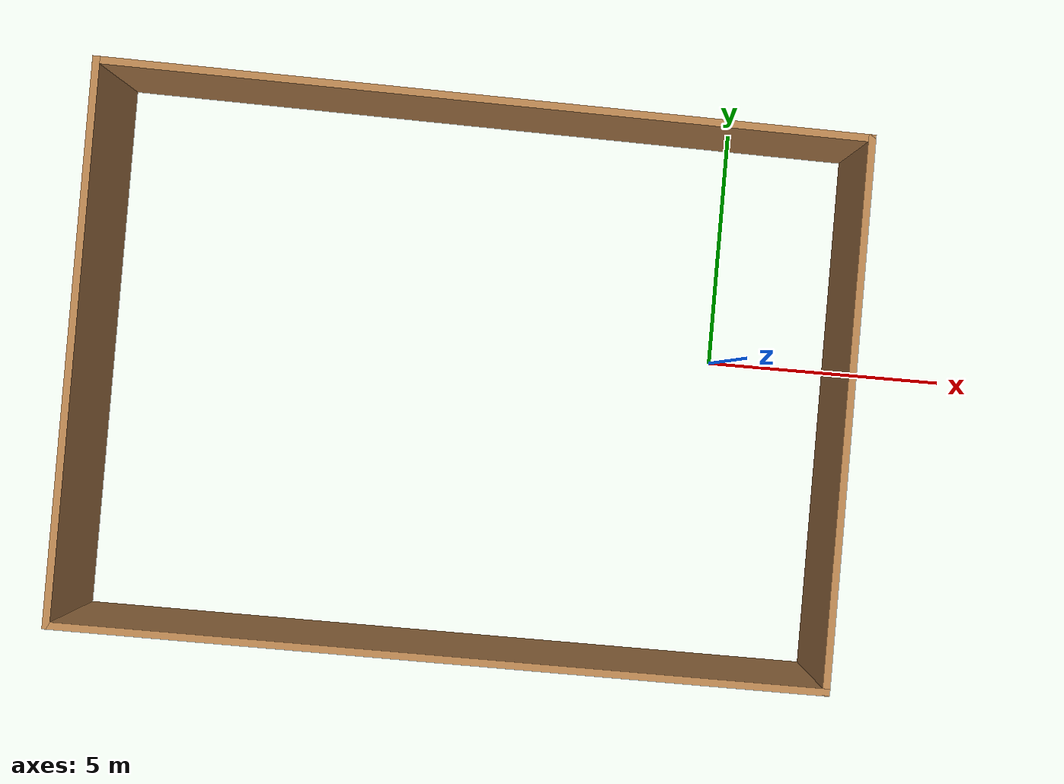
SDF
<?xml version='1.0'?>
<sdf version='1.7'>
  <model name='house'>
    <pose>-5.25958 -0.728097 0 0 -0 0</pose>
    <link name='Wall_0'>
      <collision name='Wall_0_Collision'>
        <geometry>
          <box>
            <size>11.5 0.15 2.5</size>
          </box>
        </geometry>
        <pose>0 0 1.25 0 -0 0</pose>
      </collision>
      <visual name='Wall_0_Visual'>
        <pose>0 0 1.25 0 -0 0</pose>
        <geometry>
          <box>
            <size>11.5 0.15 2.5</size>
          </box>
        </geometry>
        <material>
          <script>
            <uri>file://media/materials/scripts/gazebo.material</uri>
            <name>Gazebo/Wood</name>
          </script>
          <ambient>1 1 1 1</ambient>
        </material>
        <meta>
          <layer>0</layer>
        </meta>
      </visual>
      <pose>-7.8 -0.000596 0 0 -0 -1.5708</pose>
    </link>
    <link name='Wall_1'>
      <collision name='Wall_1_Collision'>
        <geometry>
          <box>
            <size>15.75 0.15 2.5</size>
          </box>
        </geometry>
        <pose>0 0 1.25 0 -0 0</pose>
      </collision>
      <visual name='Wall_1_Visual'>
        <pose>0 0 1.25 0 -0 0</pose>
        <geometry>
          <box>
            <size>15.75 0.15 2.5</size>
          </box>
        </geometry>
        <material>
          <script>
            <uri>file://media/materials/scripts/gazebo.material</uri>
            <name>Gazebo/Wood</name>
          </script>
          <ambient>1 1 1 1</ambient>
        </material>
        <meta>
          <layer>0</layer>
        </meta>
      </visual>
      <pose>0 -5.6756 0 0 -0 0</pose>
    </link>
    <link name='Wall_2'>
      <collision name='Wall_2_Collision'>
        <geometry>
          <box>
            <size>11.25 0.15 2.5</size>
          </box>
        </geometry>
        <pose>0 0 1.25 0 -0 0</pose>
      </collision>
      <visual name='Wall_2_Visual'>
        <pose>0 0 1.25 0 -0 0</pose>
        <geometry>
          <box>
            <size>11.25 0.15 2.5</size>
          </box>
        </geometry>
        <material>
          <script>
            <uri>file://media/materials/scripts/gazebo.material</uri>
            <name>Gazebo/Wood</name>
          </script>
          <ambient>1 1 1 1</ambient>
        </material>
        <meta>
          <layer>0</layer>
        </meta>
      </visual>
      <pose>7.8 -0.125596 0 0 -0 1.5708</pose>
    </link>
    <link name='Wall_3'>
      <collision name='Wall_3_Collision'>
        <geometry>
          <box>
            <size>15.752 0.15 2.5</size>
          </box>
        </geometry>
        <pose>0 0 1.25 0 -0 0</pose>
      </collision>
      <visual name='Wall_3_Visual'>
        <pose>0 0 1.25 0 -0 0</pose>
        <geometry>
          <box>
            <size>15.752 0.15 2.5</size>
          </box>
        </geometry>
        <material>
          <script>
            <uri>file://media/materials/scripts/gazebo.material</uri>
            <name>Gazebo/Wood</name>
          </script>
          <ambient>1 1 1 1</ambient>
        </material>
        <meta>
          <layer>0</layer>
        </meta>
      </visual>
      <pose>0 5.5494 0 0 -0 3.12557</pose>
    </link>
    <static>1</static>
  </model>
</sdf>
